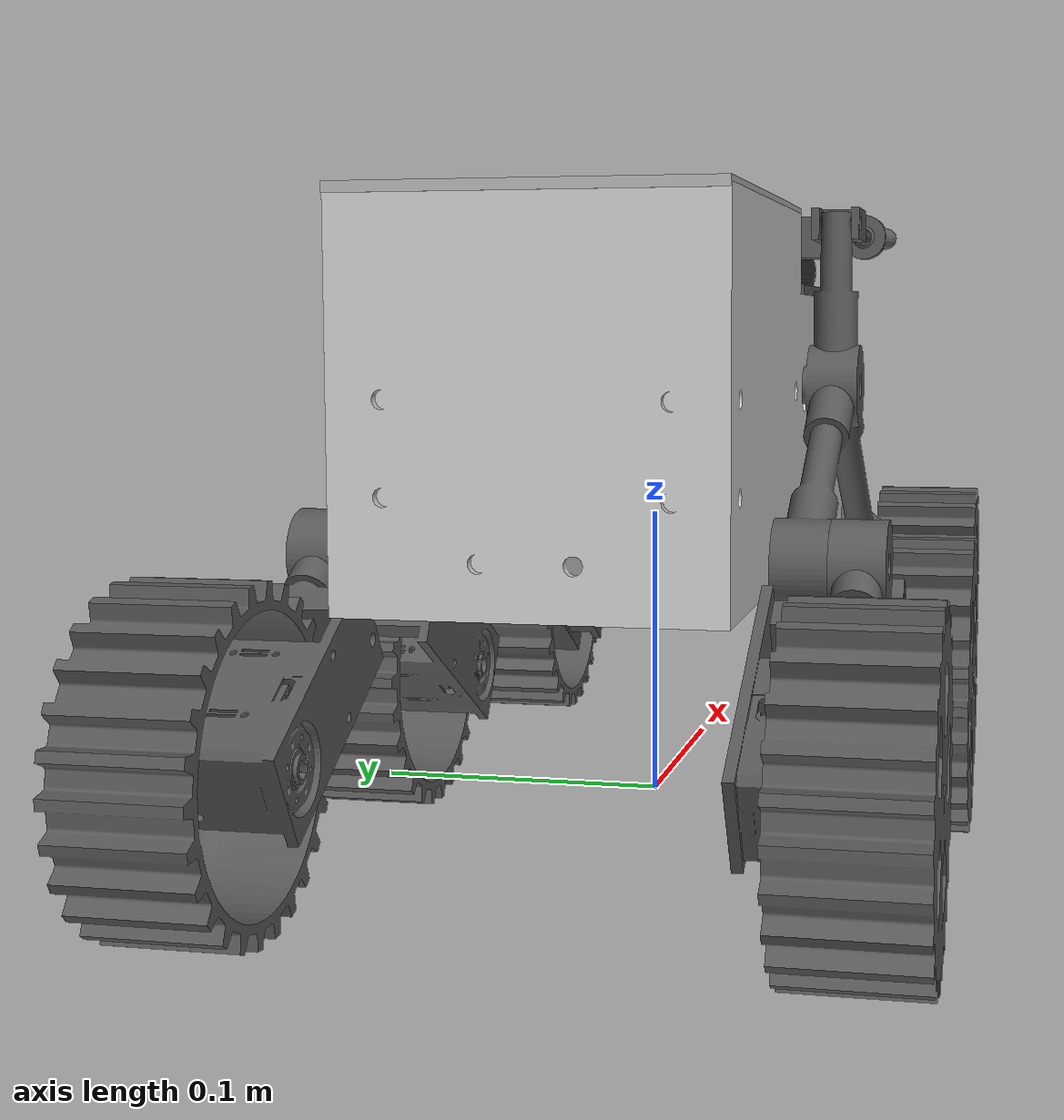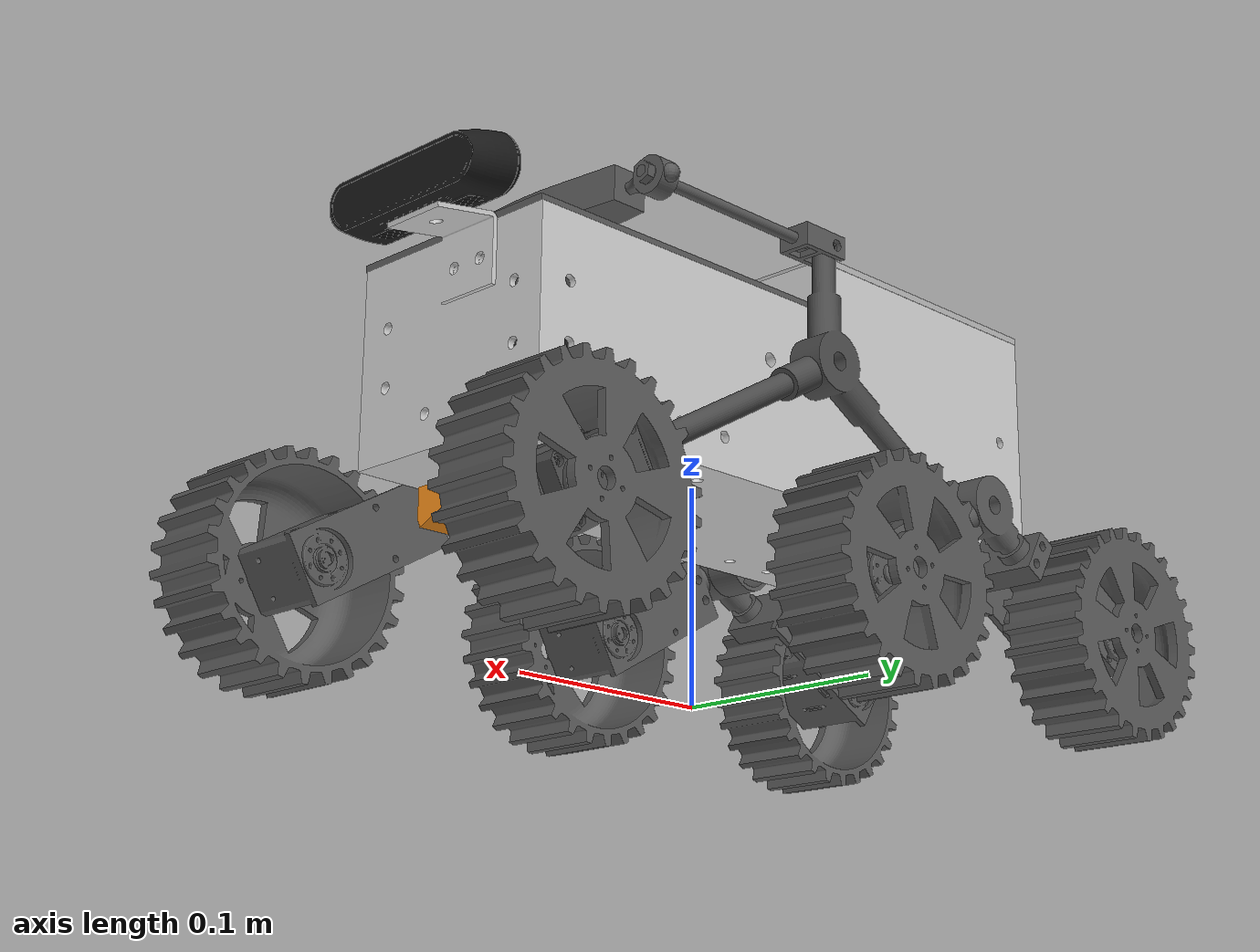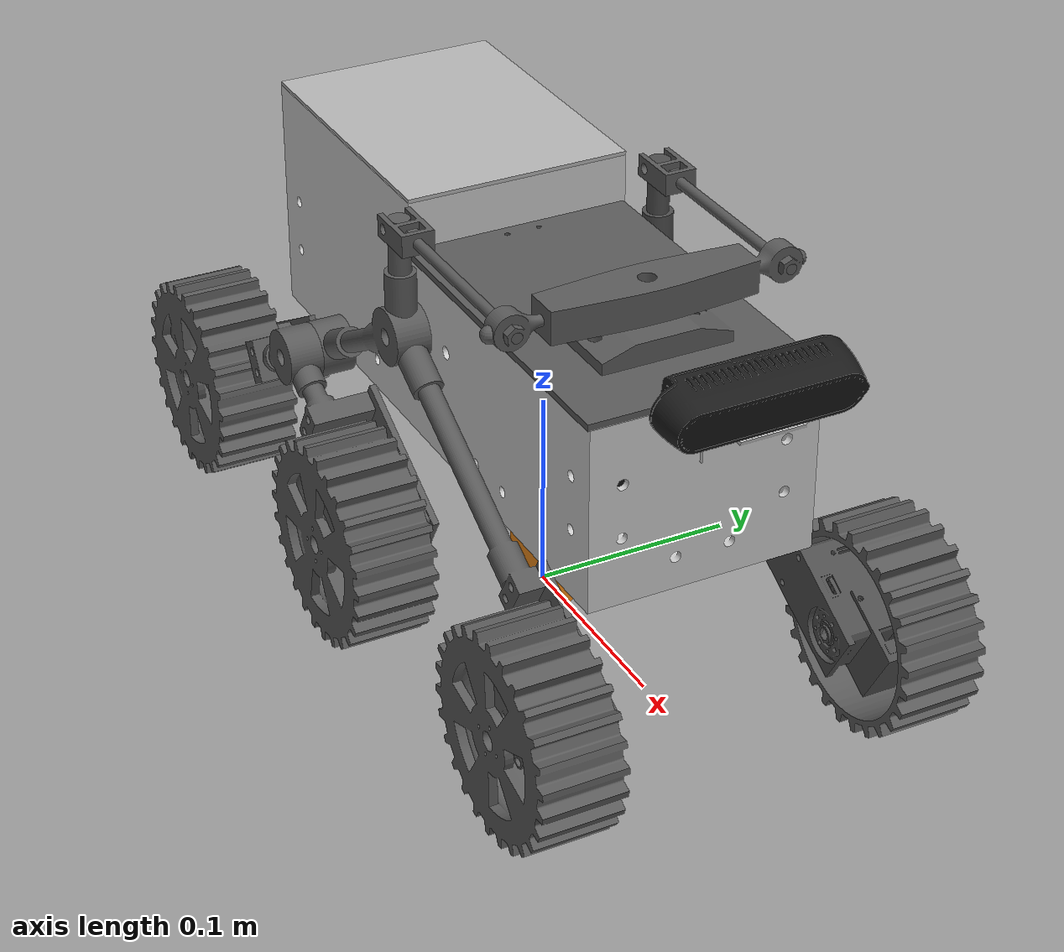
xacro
<?xml version="1.0"?>
<robot xmlns:xacro="http://www.ros.org/wiki/xacro" name="moonmapper">

  <!-- Egenskaper og argumenter -->
  <xacro:property name="deg" value="0.017453292519943295"/>
  <xacro:property name="base_link_z_above_footprint" value="0.1242"/>

  <xacro:arg name="enable_urdf_mimic" default="true"/>
  <xacro:arg name="use_gazebo" default="false"/>
  <xacro:arg name="simple_collision_debug" default="false"/>

  <!-- Makrør (kollisjon / inertial) -->
  <xacro:macro name="negligible_inertial">
    <inertial>
      <origin xyz="0 0 0" rpy="0 0 0"/>
      <mass value="1e-6"/>
      <inertia ixx="1e-12" ixy="0" ixz="0" iyy="1e-12" iyz="0" izz="1e-12"/>
    </inertial>
  </xacro:macro>

  <xacro:macro name="rocker_stl_collision" params="mesh_file">
    <collision>
      <origin xyz="0 0 0" rpy="0 0 0"/>
      <geometry>
        <mesh filename="package://moonmapper_description/meshes/visual/${mesh_file}" scale="1 1 1"/>
      </geometry>
    </collision>
  </xacro:macro>

  <xacro:macro name="rocker_primitive_collision">
    <collision>
      <origin xyz="0 0.010 0" rpy="0 0 0"/>
      <geometry>
        <box size="0.14 0.034 0.034"/>
      </geometry>
    </collision>
  </xacro:macro>

  <xacro:macro name="bogie_primitive_collision">
    <collision>
      <origin xyz="0 0.014 0" rpy="0 0 0"/>
      <geometry>
        <box size="0.10 0.040 0.028"/>
      </geometry>
    </collision>
  </xacro:macro>

  <xacro:macro name="wheel_primitive_collision">
    <collision>
      <origin xyz="0 0 0" rpy="1.5707963267948966 0 0"/>
      <geometry>
        <cylinder radius="0.045" length="0.039"/>
      </geometry>
    </collision>
  </xacro:macro>

  <xacro:macro name="diff_bar_primitive_collision">
    <collision>
      <origin xyz="0 0 0" rpy="0 0 0"/>
      <geometry>
        <box size="0.16 0.028 0.028"/>
      </geometry>
    </collision>
  </xacro:macro>

  <!-- Base -->
  <link name="base_footprint"/>

  <joint name="base_footprint_to_base_link" type="fixed">
    <parent link="base_footprint"/>
    <child link="base_link"/>
    <origin xyz="0 0 ${base_link_z_above_footprint}" rpy="0 0 0"/>
  </joint>

  <link name="base_link">
    <visual>
      <origin xyz="0 0 0" rpy="0 0 0"/>
      <geometry>
        <mesh filename="package://moonmapper_description/meshes/visual/robot_base.stl" scale="1 1 1"/>
      </geometry>
      <material name="gray">
        <color rgba="0.8 0.8 0.8 1.0"/>
      </material>
    </visual>
    <xacro:unless value="$(arg simple_collision_debug)">
      <collision>
        <origin xyz="-0.020 0 0.011" rpy="0 0 0"/>
        <geometry>
          <box size="0.048 0.025 0.018"/>
        </geometry>
      </collision>
    </xacro:unless>
    <inertial>
      <origin xyz="0.038 0 0.010" rpy="0 0 0"/>
      <mass value="0.907"/>
      <inertia ixx="0.0017487" ixy="0" ixz="0" iyy="0.0079457" iyz="0" izz="0.0078645"/>
    </inertial>
  </link>

  <!-- Rocker-bogie: høyre side -->
  <link name="rocker_right_link">
    <visual>
      <origin xyz="0 0 0" rpy="0 0 0"/>
      <geometry>
        <mesh filename="package://moonmapper_description/meshes/visual/rocker_right_link.stl" scale="1 1 1"/>
      </geometry>
      <material name="dark_gray">
        <color rgba="0.3 0.3 0.3 1.0"/>
      </material>
    </visual>
    <xacro:unless value="$(arg simple_collision_debug)">
      <xacro:rocker_stl_collision mesh_file="rocker_right_link.stl"/>
    </xacro:unless>
    <inertial>
      <origin xyz="0.030 0 -0.028" rpy="0 0 0"/>
      <mass value="0.166"/>
      <inertia ixx="0.0000488" ixy="0" ixz="0" iyy="0.0003785" iyz="0" izz="0.0003785"/>
    </inertial>
  </link>

  <joint name="rocker_right_joint" type="revolute">
    <parent link="base_link"/>
    <child link="rocker_right_link"/>
    <origin xyz="-0.014227 0.065999 0.021756" rpy="0 0 0"/>
    <axis xyz="0 1 0"/>
    <dynamics damping="0.10" friction="0.02"/>
    <limit lower="${-35*deg}" upper="${35*deg}" effort="20" velocity="6.0"/>
  </joint>

  <link name="feste_mellom_feste_og_stang_right_link">
    <visual>
      <origin xyz="0 0 0" rpy="0 0 0"/>
      <geometry>
        <mesh filename="package://moonmapper_description/meshes/visual/feste_mellom_feste_og_stang_right_link.stl" scale="1 1 1"/>
      </geometry>
      <material name="moonmapper_dark_gray">
        <color rgba="0.35 0.35 0.35 1.0"/>
      </material>
    </visual>
    <inertial>
      <origin xyz="0 0 0" rpy="0 0 0"/>
      <mass value="0.003"/>
      <inertia ixx="2e-8" ixy="0" ixz="0" iyy="2e-8" iyz="0" izz="2e-8"/>
    </inertial>
  </link>

  <xacro:unless value="$(arg use_gazebo)">
    <joint name="feste_mellom_feste_og_stang_right_joint" type="prismatic">
      <parent link="base_link"/>
      <child link="feste_mellom_feste_og_stang_right_link"/>
      <origin xyz="-0.013913 0.067245 0.076373" rpy="0 0 0"/>
      <axis xyz="1 0 0"/>
      <xacro:if value="$(arg enable_urdf_mimic)">
        <mimic joint="rocker_bogie_diff_joint" multiplier="0.05" offset="0.0"/>
      </xacro:if>
      <limit lower="${-1*deg}" upper="${1*deg}" effort="50" velocity="3.0"/>
    </joint>
  </xacro:unless>
  <xacro:if value="$(arg use_gazebo)">
    <joint name="feste_mellom_feste_og_stang_right_joint" type="fixed">
      <parent link="base_link"/>
      <child link="feste_mellom_feste_og_stang_right_link"/>
      <origin xyz="-0.013913 0.067245 0.076373" rpy="0 0 0"/>
    </joint>
  </xacro:if>

<!-- Stang høyre side -->
  <link name="stang_right_link">
    <visual>
      <origin xyz="0 0 0" rpy="0 0 0"/>
      <geometry>
        <mesh filename="package://moonmapper_description/meshes/visual/stang_right_link.stl" scale="1 1 1"/>
      </geometry>
      <material name="moonmapper_dark_gray">
        <color rgba="0.35 0.35 0.35 1.0"/>
      </material>
    </visual>
    <inertial>
      <origin xyz="0 0 0" rpy="0 0 0"/>
      <mass value="0.005"/>
      <inertia ixx="1e-8" ixy="0" ixz="0" iyy="1e-8" iyz="0" izz="1e-8"/>
    </inertial>
  </link>

  <xacro:unless value="$(arg use_gazebo)">
    <joint name="stang_right_joint" type="prismatic">
      <parent link="feste_mellom_feste_og_stang_right_link"/>
      <child link="stang_right_link"/>
      <origin xyz="0.101730 0.000140 0.000033" rpy="0 0 0"/>
      <axis xyz="1 0 0"/>
      <xacro:if value="$(arg enable_urdf_mimic)">
        <mimic joint="feste_mellom_feste_og_stang_right_joint" multiplier="0.05" offset="0.0"/>
      </xacro:if>
      <limit lower="${-1*deg}" upper="${1*deg}" effort="50" velocity="3.0"/>
    </joint>
  </xacro:unless>
  <xacro:if value="$(arg use_gazebo)">
    <joint name="stang_right_joint" type="fixed">
      <parent link="feste_mellom_feste_og_stang_right_link"/>
      <child link="stang_right_link"/>
      <origin xyz="0.101730 0.000140 0.000033" rpy="0 0 0"/>
    </joint>
  </xacro:if>

  <!-- Bogie høyre side -->
  <link name="bogie_right_link">
    <visual>
      <origin xyz="0 0 0" rpy="0 0 0"/>
      <geometry>
        <mesh filename="package://moonmapper_description/meshes/visual/bogie_right_link.stl" scale="1 1 1"/>
      </geometry>
      <material name="moonmapper_dark_gray">
        <color rgba="0.35 0.35 0.35 1.0"/>
      </material>
    </visual>
    <xacro:unless value="$(arg simple_collision_debug)">
      <xacro:rocker_stl_collision mesh_file="bogie_right_link.stl"/>
    </xacro:unless>
    <inertial>
      <origin xyz="0 0 0" rpy="0 0 0"/>
      <mass value="0.112"/>
      <inertia ixx="0.0000505" ixy="0" ixz="0" iyy="0.0001596" iyz="0" izz="0.0001596"/>
    </inertial>
  </link>

  <joint name="bogie_right_joint" type="revolute">
    <parent link="rocker_right_link"/>
    <child link="bogie_right_link"/>
    <origin xyz="-0.087545 0.025322 -0.050495" rpy="0 0 0"/>
    <axis xyz="0 1 0"/>
    <dynamics damping="0.08" friction="0.015"/>
    <limit lower="${-45*deg}" upper="${45*deg}" effort="20" velocity="6.0"/>
  </joint>

  <!-- Hjul høyre side 1 -->
  <link name="wheel_r1_link">
    <visual>
      <origin xyz="0 0 0" rpy="0 0 0"/>
      <geometry>
        <mesh filename="package://moonmapper_description/meshes/visual/wheel_r1_link.stl" scale="1 1 1"/>
      </geometry>
      <material name="moonmapper_dark_gray">
        <color rgba="0.35 0.35 0.35 1.0"/>
      </material>
    </visual>
    <xacro:wheel_primitive_collision/>
    <inertial>
      <origin xyz="0 0 0" rpy="0 0 0"/>
      <mass value="0.110"/>
      <inertia ixx="0.0000697" ixy="0" ixz="0" iyy="0.0001114" iyz="0" izz="0.0000697"/>
    </inertial>
  </link>

  <joint name="wheel_r1_joint" type="continuous">
    <parent link="rocker_right_link"/>
    <child link="wheel_r1_link"/>
    <origin xyz="0.170916 0.039688 -0.099612" rpy="0 0 0"/>
    <axis xyz="0 1 0"/>
    <dynamics damping="0.01" friction="0.0"/>
    <limit effort="60.0" velocity="40.0"/>
  </joint>

  <!-- Hjul høyre side 2 -->
  <link name="wheel_r2_link">
    <visual>
      <origin xyz="0 0 0" rpy="0 0 0"/>
      <geometry>
        <mesh filename="package://moonmapper_description/meshes/visual/wheel_r2_link.stl" scale="1 1 1"/>
      </geometry>
      <material name="moonmapper_dark_gray">
        <color rgba="0.35 0.35 0.35 1.0"/>
      </material>
    </visual>
    <xacro:wheel_primitive_collision/>
    <inertial>
      <origin xyz="0 0 0" rpy="0 0 0"/>
      <mass value="0.110"/>
      <inertia ixx="0.0000697" ixy="0" ixz="0" iyy="0.0001114" iyz="0" izz="0.0000697"/>
    </inertial>
  </link>

  <joint name="wheel_r2_joint" type="continuous">
    <parent link="bogie_right_link"/>
    <child link="wheel_r2_link"/>
    <origin xyz="0.088585 0.022644 -0.050672" rpy="0 0 0"/>
    <axis xyz="0 1 0"/>
    <dynamics damping="0.01" friction="0.0"/>
    <limit effort="60.0" velocity="40.0"/>
  </joint>

  <!-- Hjul høyre side 3 -->
  <link name="wheel_r3_link">
    <visual>
      <origin xyz="0 0 0" rpy="0 0 0"/>
      <geometry>
        <mesh filename="package://moonmapper_description/meshes/visual/wheel_r3_link.stl" scale="1 1 1"/>
      </geometry>
      <material name="moonmapper_dark_gray">
        <color rgba="0.35 0.35 0.35 1.0"/>
      </material>
    </visual>
    <xacro:wheel_primitive_collision/>
    <inertial>
      <origin xyz="0 0 0" rpy="0 0 0"/>
      <mass value="0.110"/>
      <inertia ixx="0.0000697" ixy="0" ixz="0" iyy="0.0001114" iyz="0" izz="0.0000697"/>
    </inertial>
  </link>

  <joint name="wheel_r3_joint" type="continuous">
    <parent link="bogie_right_link"/>
    <child link="wheel_r3_link"/>
    <origin xyz="-0.081571 0.016915 -0.048426" rpy="0 0 0"/>
    <axis xyz="0 1 0"/>
    <dynamics damping="0.01" friction="0.0"/>
    <limit effort="60.0" velocity="40.0"/>
  </joint>

  <!-- Rocker-bogie: venstre side -->

  <link name="rocker_left_link">
    <visual>
      <origin xyz="0 0 0" rpy="0 0 0"/>
      <geometry>
        <mesh filename="package://moonmapper_description/meshes/visual/rocker_left_link.stl" scale="1 1 1"/>
      </geometry>
      <material name="moonmapper_dark_gray">
        <color rgba="0.35 0.35 0.35 1.0"/>
      </material>
    </visual>
    <xacro:unless value="$(arg simple_collision_debug)">
      <xacro:rocker_stl_collision mesh_file="rocker_left_link.stl"/>
    </xacro:unless>
    <inertial>
      <origin xyz="0.030 0 -0.028" rpy="0 0 0"/>
      <mass value="0.166"/>
      <inertia ixx="0.0000488" ixy="0" ixz="0" iyy="0.0003785" iyz="0" izz="0.0003785"/>
    </inertial>
  </link>

  <joint name="rocker_left_joint" type="revolute">
    <parent link="base_link"/>
    <child link="rocker_left_link"/>
    <origin xyz="-0.014252 -0.064048 0.021830" rpy="0 0 0"/>
    <axis xyz="0 1 0"/>
    <dynamics damping="0.10" friction="0.02"/>
    <limit lower="${-35*deg}" upper="${35*deg}" effort="20" velocity="6.0"/>
    <xacro:if value="$(arg enable_urdf_mimic)">
      <mimic joint="rocker_right_joint" multiplier="-1.0" offset="0.0"/>
    </xacro:if>
  </joint>

  <!-- Festet mellom feste og stang venstre side -->
  <link name="feste_mellom_feste_og_stang_left_link">
    <visual>
      <origin xyz="0 0 0" rpy="0 0 0"/>
      <geometry>
        <mesh filename="package://moonmapper_description/meshes/visual/feste_mellom_feste_og_stang_left_link.stl" scale="1 1 1"/>
      </geometry>
      <material name="moonmapper_dark_gray">
        <color rgba="0.35 0.35 0.35 1.0"/>
      </material>
    </visual>
    <inertial>
      <origin xyz="0 0 0" rpy="0 0 0"/>
      <mass value="0.003"/>
      <inertia ixx="2e-8" ixy="0" ixz="0" iyy="2e-8" iyz="0" izz="2e-8"/>
    </inertial>
  </link>

  <xacro:unless value="$(arg use_gazebo)">
    <joint name="feste_mellom_feste_og_stang_left_joint" type="prismatic">
      <parent link="base_link"/>
      <child link="feste_mellom_feste_og_stang_left_link"/>
      <origin xyz="-0.013977 -0.064006 0.076371" rpy="0 0 0"/>
      <xacro:if value="$(arg enable_urdf_mimic)">
        <mimic joint="rocker_bogie_diff_joint" multiplier="0.05" offset="0.0"/>
      </xacro:if>
      <axis xyz="-1 0 0"/>
      <limit lower="${-1*deg}" upper="${1*deg}" effort="50" velocity="3.0"/>
    </joint>
  </xacro:unless>
  <xacro:if value="$(arg use_gazebo)">
    <joint name="feste_mellom_feste_og_stang_left_joint" type="fixed">
      <parent link="base_link"/>
      <child link="feste_mellom_feste_og_stang_left_link"/>
      <origin xyz="-0.013977 -0.064006 0.076371" rpy="0 0 0"/>
    </joint>
  </xacro:if>

  <!-- Stang venstre side -->
  <link name="stang_left_link">
    <visual>
      <origin xyz="0 0 0" rpy="0 0 0"/>
      <geometry>
        <mesh filename="package://moonmapper_description/meshes/visual/stang_left_link.stl" scale="1 1 1"/>
      </geometry>
      <material name="moonmapper_dark_gray">
        <color rgba="0.35 0.35 0.35 1.0"/>
      </material>
    </visual>
    <inertial>
      <origin xyz="0 0 0" rpy="0 0 0"/>
      <mass value="0.005"/>
      <inertia ixx="1e-8" ixy="0" ixz="0" iyy="1e-8" iyz="0" izz="1e-8"/>
    </inertial>
  </link>

  <xacro:unless value="$(arg use_gazebo)">
    <joint name="stang_left_joint" type="prismatic">
      <parent link="feste_mellom_feste_og_stang_left_link"/>
      <child link="stang_left_link"/>
      <origin xyz="0.101903 -0.001198 0.000110" rpy="0 0 0"/>
      <axis xyz="1 0 0"/>
      <xacro:if value="$(arg enable_urdf_mimic)">
        <mimic joint="feste_mellom_feste_og_stang_left_joint" multiplier="0.05" offset="0.0"/>
      </xacro:if>
      <limit lower="${-1*deg}" upper="${1*deg}" effort="50" velocity="3.0"/>
    </joint>
  </xacro:unless>
  <xacro:if value="$(arg use_gazebo)">
    <joint name="stang_left_joint" type="fixed">
      <parent link="feste_mellom_feste_og_stang_left_link"/>
      <child link="stang_left_link"/>
      <origin xyz="0.101903 -0.001198 0.000110" rpy="0 0 0"/>
    </joint>
  </xacro:if>

  <!-- Bogie venstre side -->
  <link name="bogie_left_link">
    <visual>
      <origin xyz="0 0 0" rpy="0 0 0"/>
      <geometry>
        <mesh filename="package://moonmapper_description/meshes/visual/bogie_left_link.stl" scale="1 1 1"/>
      </geometry>
      <material name="moonmapper_dark_gray">
        <color rgba="0.35 0.35 0.35 1.0"/>
      </material>
    </visual>
    <xacro:unless value="$(arg simple_collision_debug)">
      <xacro:rocker_stl_collision mesh_file="bogie_left_link.stl"/>
    </xacro:unless>
    <inertial>
      <origin xyz="0 0 0" rpy="0 0 0"/>
      <mass value="0.112"/>
      <inertia ixx="0.0000505" ixy="0" ixz="0" iyy="0.0001596" iyz="0" izz="0.0001596"/>
    </inertial>
  </link>

  <joint name="bogie_left_joint" type="revolute">
    <parent link="rocker_left_link"/>
    <child link="bogie_left_link"/>
    <origin xyz="-0.087063 -0.025935 -0.050645" rpy="0 0 0"/>
    <axis xyz="0 1 0"/>
    <dynamics damping="0.08" friction="0.015"/>
    <limit lower="${-45*deg}" upper="${45*deg}" effort="20" velocity="6.0"/>
  </joint>

  <!-- Hjul venstre side 1 -->
  <link name="wheel_l1_link">
    <visual>
      <origin xyz="0 0 0" rpy="0 0 0"/>
      <geometry>
        <mesh filename="package://moonmapper_description/meshes/visual/wheel_l1_link.stl" scale="1 1 1"/>
      </geometry>
      <material name="moonmapper_dark_gray">
        <color rgba="0.35 0.35 0.35 1.0"/>
      </material>
    </visual>
    <xacro:wheel_primitive_collision/>
    <inertial>
      <origin xyz="0 0 0" rpy="0 0 0"/>
      <mass value="0.110"/>
      <inertia ixx="0.0000697" ixy="0" ixz="0" iyy="0.0001114" iyz="0" izz="0.0000697"/>
    </inertial>
  </link>

  <joint name="wheel_l1_joint" type="continuous">
    <parent link="rocker_left_link"/>
    <child link="wheel_l1_link"/>
    <origin xyz="0.170218 -0.040994 -0.100687" rpy="0 0 0"/>
    <axis xyz="0 1 0"/>
    <dynamics damping="0.01" friction="0.0"/>
    <limit effort="60.0" velocity="40.0"/>
  </joint>

  <!-- Hjul venstre side 2 -->
  <link name="wheel_l2_link">
    <visual>
      <origin xyz="0 0 0" rpy="0 0 0"/>
      <geometry>
        <mesh filename="package://moonmapper_description/meshes/visual/wheel_l2_link.stl" scale="1 1 1"/>
      </geometry>
      <material name="moonmapper_dark_gray">
        <color rgba="0.35 0.35 0.35 1.0"/>
      </material>
    </visual>
    <xacro:wheel_primitive_collision/>
    <inertial>
      <origin xyz="0 0 0" rpy="0 0 0"/>
      <mass value="0.110"/>
      <inertia ixx="0.0000697" ixy="0" ixz="0" iyy="0.0001114" iyz="0" izz="0.0000697"/>
    </inertial>
  </link>

  <joint name="wheel_l2_joint" type="continuous">
    <parent link="bogie_left_link"/>
    <child link="wheel_l2_link"/>
    <origin xyz="0.087657 -0.020188 -0.050374" rpy="0 0 0"/>
    <axis xyz="0 1 0"/>
    <dynamics damping="0.01" friction="0.0"/>
    <limit effort="60.0" velocity="40.0"/>
  </joint>

  <!-- Hjul venstre side 3 -->
  <link name="wheel_l3_link">
    <visual>
      <origin xyz="0 0 0" rpy="0 0 0"/>
      <geometry>
        <mesh filename="package://moonmapper_description/meshes/visual/wheel_l3_link.stl" scale="1 1 1"/>
      </geometry>
      <material name="moonmapper_dark_gray">
        <color rgba="0.35 0.35 0.35 1.0"/>
      </material>
    </visual>
    <xacro:wheel_primitive_collision/>
    <inertial>
      <origin xyz="0 0 0" rpy="0 0 0"/>
      <mass value="0.110"/>
      <inertia ixx="0.0000697" ixy="0" ixz="0" iyy="0.0001114" iyz="0" izz="0.0000697"/>
    </inertial>
  </link>

  <joint name="wheel_l3_joint" type="continuous">
    <parent link="bogie_left_link"/>
    <child link="wheel_l3_link"/>
    <origin xyz="-0.082028 -0.018253 -0.048350" rpy="0 0 0"/>
    <axis xyz="0 1 0"/>
    <dynamics damping="0.01" friction="0.0"/>
    <limit effort="60.0" velocity="40.0"/>
  </joint>

  <!-- ros2_control: hjul-transmissions -->

  <transmission name="wheel_l1_trans">
    <type>transmission_interface/SimpleTransmission</type>
    <joint name="wheel_l1_joint">
      <hardwareInterface>hardware_interface/VelocityJointInterface</hardwareInterface>
    </joint>
    <actuator name="wheel_l1_motor">
      <hardwareInterface>hardware_interface/VelocityJointInterface</hardwareInterface>
      <mechanicalReduction>1</mechanicalReduction>
    </actuator>
  </transmission>

  <transmission name="wheel_l2_trans">
    <type>transmission_interface/SimpleTransmission</type>
    <joint name="wheel_l2_joint">
      <hardwareInterface>hardware_interface/VelocityJointInterface</hardwareInterface>
    </joint>
    <actuator name="wheel_l2_motor">
      <hardwareInterface>hardware_interface/VelocityJointInterface</hardwareInterface>
      <mechanicalReduction>1</mechanicalReduction>
    </actuator>
  </transmission>

  <transmission name="wheel_l3_trans">
    <type>transmission_interface/SimpleTransmission</type>
    <joint name="wheel_l3_joint">
      <hardwareInterface>hardware_interface/VelocityJointInterface</hardwareInterface>
    </joint>
    <actuator name="wheel_l3_motor">
      <hardwareInterface>hardware_interface/VelocityJointInterface</hardwareInterface>
      <mechanicalReduction>1</mechanicalReduction>
    </actuator>
  </transmission>

  <transmission name="wheel_r1_trans">
    <type>transmission_interface/SimpleTransmission</type>
    <joint name="wheel_r1_joint">
      <hardwareInterface>hardware_interface/VelocityJointInterface</hardwareInterface>
    </joint>
    <actuator name="wheel_r1_motor">
      <hardwareInterface>hardware_interface/VelocityJointInterface</hardwareInterface>
      <mechanicalReduction>1</mechanicalReduction>
    </actuator>
  </transmission>

  <transmission name="wheel_r2_trans">
    <type>transmission_interface/SimpleTransmission</type>
    <joint name="wheel_r2_joint">
      <hardwareInterface>hardware_interface/VelocityJointInterface</hardwareInterface>
    </joint>
    <actuator name="wheel_r2_motor">
      <hardwareInterface>hardware_interface/VelocityJointInterface</hardwareInterface>
      <mechanicalReduction>1</mechanicalReduction>
    </actuator>
  </transmission>

  <transmission name="wheel_r3_trans">
    <type>transmission_interface/SimpleTransmission</type>
    <joint name="wheel_r3_joint">
      <hardwareInterface>hardware_interface/VelocityJointInterface</hardwareInterface>
    </joint>
    <actuator name="wheel_r3_motor">
      <hardwareInterface>hardware_interface/VelocityJointInterface</hardwareInterface>
      <mechanicalReduction>1</mechanicalReduction>
    </actuator>
  </transmission>

  <!-- Diff-stav / walking beam -->

  <link name="feste_rocker_karosseri_link">
    <visual>
      <origin xyz="0 0 0" rpy="0 0 0"/>
      <geometry>
        <mesh filename="package://moonmapper_description/meshes/visual/feste_rocker_til_karosseri_link.stl" scale="1 1 1"/>
      </geometry>
      <material name="moonmapper_dark_gray">
        <color rgba="0.35 0.35 0.35 1.0"/>
      </material>
    </visual>
    <inertial>
      <origin xyz="0 0 0" rpy="0 0 0"/>
      <mass value="0.020"/>
      <inertia ixx="1.4e-6" ixy="0" ixz="0" iyy="2.1e-6" iyz="0" izz="2.1e-6"/>
    </inertial>
  </link>

  <joint name="feste_rocker_karosseri_joint" type="fixed">
    <parent link="base_link"/>
    <child link="feste_rocker_karosseri_link"/>
    <origin xyz="0.091894 0.000000 0.061503" rpy="0 0 0"/>
  </joint>

  <link name="rocker_bogie_diff_link">
    <visual>
      <origin xyz="0 0 0" rpy="0 0 0"/>
      <geometry>
        <mesh filename="package://moonmapper_description/meshes/visual/rocker_bogie_diff_link.stl" scale="1 1 1"/>
      </geometry>
      <material name="moonmapper_dark_gray">
        <color rgba="0.35 0.35 0.35 1.0"/>
      </material>
    </visual>
    <xacro:unless value="$(arg simple_collision_debug)">
      <xacro:rocker_stl_collision mesh_file="rocker_bogie_diff_link.stl"/>
    </xacro:unless>
    <inertial>
      <origin xyz="0 0 0" rpy="0 0 0"/>
      <mass value="0.060"/>
      <inertia ixx="0.00000784" ixy="0" ixz="0" iyy="0.0001319" iyz="0" izz="0.0001319"/>
    </inertial>
  </link>

  <!-- Visuelle kule-endepunkter pa diff-stav (lukket sløyfe modelleres i Gazebo-plugin) -->
  <link name="stang_left_tip_link">
    <visual>
      <origin xyz="0 0 0" rpy="0 0 0"/>
      <geometry>
        <sphere radius="0.004"/>
      </geometry>
      <material name="moonmapper_dark_gray">
        <color rgba="0.35 0.35 0.35 1.0"/>
      </material>
    </visual>
    <inertial>
      <origin xyz="0 0 0" rpy="0 0 0"/>
      <mass value="0.001"/>
      <inertia ixx="1e-8" ixy="0" ixz="0" iyy="1e-8" iyz="0" izz="1e-8"/>
    </inertial>
  </link>

  <joint name="stang_left_tip_joint" type="fixed">
    <parent link="rocker_bogie_diff_link"/>
    <child link="stang_left_tip_link"/>
    <origin xyz="0.0 0.0747 0.0" rpy="0 0 0"/>
  </joint>

  <link name="stang_right_tip_link">
    <visual>
      <origin xyz="0 0 0" rpy="0 0 0"/>
      <geometry>
        <sphere radius="0.004"/>
      </geometry>
      <material name="moonmapper_dark_gray">
        <color rgba="0.35 0.35 0.35 1.0"/>
      </material>
    </visual>
    <inertial>
      <origin xyz="0 0 0" rpy="0 0 0"/>
      <mass value="0.001"/>
      <inertia ixx="1e-8" ixy="0" ixz="0" iyy="1e-8" iyz="0" izz="1e-8"/>
    </inertial>
  </link>

  <joint name="stang_right_tip_joint" type="fixed">
    <parent link="rocker_bogie_diff_link"/>
    <child link="stang_right_tip_link"/>
    <origin xyz="0.0 -0.0747 0.0" rpy="0 0 0"/>
  </joint>

  <joint name="rocker_bogie_diff_joint" type="revolute">
    <parent link="feste_rocker_karosseri_link"/>
    <child link="rocker_bogie_diff_link"/>
    <origin xyz="0.000109 0.001094 0.014506" rpy="0 0 0"/>
    <axis xyz="0 0 1"/>
    <dynamics damping="0.05" friction="0.015"/>
    <limit lower="${-90*deg}" upper="${90*deg}" effort="100" velocity="10.0"/>
    <xacro:if value="$(arg enable_urdf_mimic)">
      <mimic joint="rocker_right_joint" multiplier="0.82" offset="0.0"/>
    </xacro:if>
  </joint>

  <!-- Tak -->

  <link name="tak_liten_link">
    <visual>
      <origin xyz="0 0 0" rpy="0 0 0"/>
      <geometry>
        <mesh filename="package://moonmapper_description/meshes/visual/Tak_liten_link.stl" scale="1 1 1"/>
      </geometry>
      <material name="moonmapper_light_gray">
        <color rgba="0.7 0.7 0.7 1.0"/>
      </material>
    </visual>
    <inertial>
      <origin xyz="0 0 0" rpy="0 0 0"/>
      <mass value="0.010"/>
      <inertia ixx="1e-7" ixy="0" ixz="0" iyy="1e-7" iyz="0" izz="1e-7"/>
    </inertial>
  </link>

  <joint name="tak_liten_joint" type="fixed">
    <parent link="base_link"/>
    <child link="tak_liten_link"/>
    <origin xyz="-0.100194 0.000939 0.079219" rpy="0 0 0"/>
  </joint>

  <!-- Sensorer (TF; Gazebo-tags i moonmapper_rover_gazebo.urdf.xacro) -->

  <link name="imu_link">
    <visual>
      <origin xyz="0 0 0" rpy="0 0 0"/>
      <geometry>
        <mesh filename="package://moonmapper_description/meshes/visual/IMU_link.stl" scale="1 1 1"/>
      </geometry>
      <material name="imu_blue">
        <color rgba="0.1 0.3 0.9 1.0"/>
      </material>
    </visual>
    <inertial>
      <origin xyz="0 0 0" rpy="0 0 0"/>
      <mass value="0.002"/>
      <inertia ixx="1e-8" ixy="0" ixz="0" iyy="1e-8" iyz="0" izz="1e-8"/>
    </inertial>
  </link>

  <joint name="imu_joint" type="fixed">
    <parent link="base_link"/>
    <child link="imu_link"/>
    <origin xyz="-0.020281 0.000988 0.052512" rpy="0 0 0"/>
  </joint>

  <link name="stereo_camera_link">
    <visual>
      <origin xyz="0 0 0" rpy="0 0 0"/>
      <geometry>
        <mesh filename="package://moonmapper_description/meshes/visual/steriokamera_link.stl" scale="1 1 1"/>
      </geometry>
      <material name="cam_black">
        <color rgba="0.1 0.1 0.1 1.0"/>
      </material>
    </visual>
    <xacro:unless value="$(arg use_gazebo)">
      <xacro:unless value="$(arg simple_collision_debug)">
        <collision>
          <origin xyz="0 0 0" rpy="0 0 0"/>
          <geometry>
            <mesh filename="package://moonmapper_description/meshes/visual/steriokamera_link.stl" scale="1 1 1"/>
          </geometry>
        </collision>
      </xacro:unless>
    </xacro:unless>
    <xacro:if value="$(arg use_gazebo)">
      <xacro:negligible_inertial/>
    </xacro:if>
    <xacro:unless value="$(arg use_gazebo)">
      <inertial>
        <origin xyz="0 0 0" rpy="0 0 0"/>
        <mass value="0.002"/>
        <inertia ixx="2e-7" ixy="0" ixz="0" iyy="2e-7" iyz="0" izz="2e-7"/>
      </inertial>
    </xacro:unless>
  </link>

  <joint name="stereo_camera_joint" type="fixed">
    <parent link="base_link"/>
    <child link="stereo_camera_link"/>
    <origin xyz="0.165483 0.004944 0.068584" rpy="0 0 0"/>
  </joint>

  <link name="stereo_left_camera_link">
    <xacro:negligible_inertial/>
  </link>

  <joint name="stereo_left_camera_joint" type="fixed">
    <parent link="stereo_camera_link"/>
    <child link="stereo_left_camera_link"/>
    <origin xyz="0.032910 0.034100 0.002791" rpy="0 0 0"/>
  </joint>

  <link name="stereo_left_optical_frame"/>

  <joint name="stereo_left_optical_joint" type="fixed">
    <parent link="stereo_left_camera_link"/>
    <child link="stereo_left_optical_frame"/>
    <origin xyz="0 0 0" rpy="-1.57079632679 0 -1.57079632679"/>
  </joint>

  <link name="stereo_right_camera_link">
    <xacro:negligible_inertial/>
  </link>

  <joint name="stereo_right_camera_joint" type="fixed">
    <parent link="stereo_camera_link"/>
    <child link="stereo_right_camera_link"/>
    <origin xyz="0.032910 -0.032034 0.002791" rpy="0 0 0"/>
  </joint>

  <link name="stereo_right_optical_frame"/>

  <joint name="stereo_right_optical_joint" type="fixed">
    <parent link="stereo_right_camera_link"/>
    <child link="stereo_right_optical_frame"/>
    <origin xyz="0 0 0" rpy="-1.57079632679 0 -1.57079632679"/>
  </joint>

  <link name="depth_camera_link">
    <xacro:negligible_inertial/>
  </link>

  <joint name="depth_camera_joint" type="fixed">
    <parent link="stereo_camera_link"/>
    <child link="depth_camera_link"/>
    <origin xyz="0.039709 0.002014 0.002791" rpy="0 0 0"/>
  </joint>

  <link name="depth_camera_optical_frame"/>

  <joint name="depth_camera_optical_joint" type="fixed">
    <parent link="depth_camera_link"/>
    <child link="depth_camera_optical_frame"/>
    <origin xyz="0 0 0" rpy="-1.57079632679 0 -1.57079632679"/>
  </joint>

  <!-- Øvrig utstyr -->

  <link name="mikroskop_link">
    <visual>
      <origin xyz="0 0 0" rpy="0 0 0"/>
      <geometry>
        <mesh filename="package://moonmapper_description/meshes/visual/Mikroskop_link.stl" scale="1 1 1"/>
      </geometry>
      <material name="cam_black">
        <color rgba="0.1 0.1 0.1 1.0"/>
      </material>
    </visual>
    <inertial>
      <origin xyz="0 0 0" rpy="0 0 0"/>
      <mass value="0.005"/>
      <inertia ixx="1e-8" ixy="0" ixz="0" iyy="1e-8" iyz="0" izz="1e-8"/>
    </inertial>
  </link>

  <joint name="mikroskop_joint" type="fixed">
    <parent link="base_link"/>
    <child link="mikroskop_link"/>
    <origin xyz="0.091849 0.001046 -0.006375" rpy="0 0 0"/>
  </joint>

  <link name="mikroskop_optical_frame"/>

  <joint name="mikroskop_optical_joint" type="fixed">
    <parent link="mikroskop_link"/>
    <child link="mikroskop_optical_frame"/>
    <origin xyz="0 0 0" rpy="-0 0 -0"/>
  </joint>

  <link name="triad_sensor_1_link">
    <visual>
      <origin xyz="0 0 0" rpy="0 0 0"/>
      <geometry>
        <mesh filename="package://moonmapper_description/meshes/visual/triadsensor1_link.stl" scale="1 1 1"/>
      </geometry>
      <material name="triad_orange">
        <color rgba="0.95 0.55 0.1 1.0"/>
      </material>
    </visual>
    <inertial>
      <origin xyz="0 0 0" rpy="0 0 0"/>
      <mass value="0.002"/>
      <inertia ixx="1e-9" ixy="0" ixz="0" iyy="1e-9" iyz="0" izz="1e-9"/>
    </inertial>
  </link>

  <joint name="triad_sensor_1_joint" type="fixed">
    <parent link="base_link"/>
    <child link="triad_sensor_1_link"/>
    <origin xyz="0.091911 -0.046088 -0.043464" rpy="0 0 0"/>
  </joint>

  <link name="triad_sensor_2_link">
    <visual>
      <origin xyz="0 0 0" rpy="0 0 0"/>
      <geometry>
        <mesh filename="package://moonmapper_description/meshes/visual/triadsensor2_link.stl" scale="1 1 1"/>
      </geometry>
      <material name="triad_orange">
        <color rgba="0.95 0.55 0.1 1.0"/>
      </material>
    </visual>
    <inertial>
      <origin xyz="0 0 0" rpy="0 0 0"/>
      <mass value="0.002"/>
      <inertia ixx="1e-9" ixy="0" ixz="0" iyy="1e-9" iyz="0" izz="1e-9"/>
    </inertial>
  </link>

  <joint name="triad_sensor_2_joint" type="fixed">
    <parent link="base_link"/>
    <child link="triad_sensor_2_link"/>
    <origin xyz="0.091833 0.048139 -0.043518" rpy="0 0 0"/>
  </joint>

</robot>
